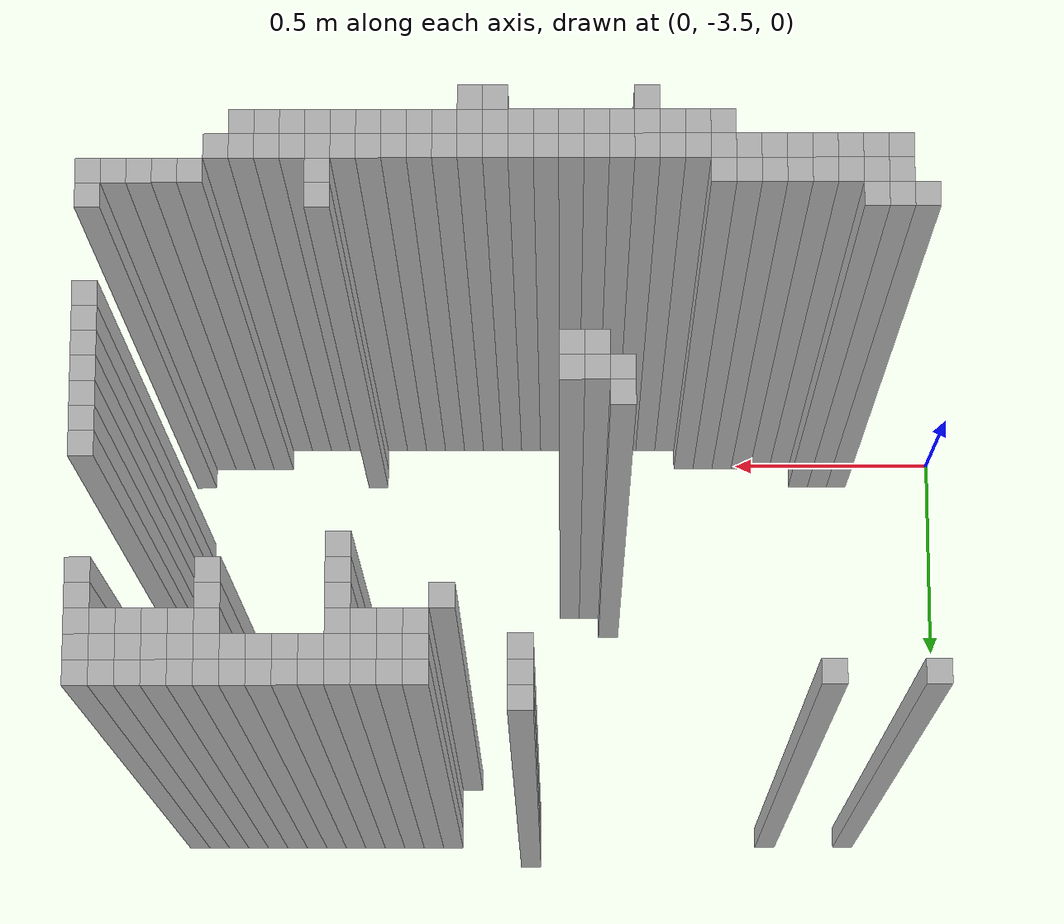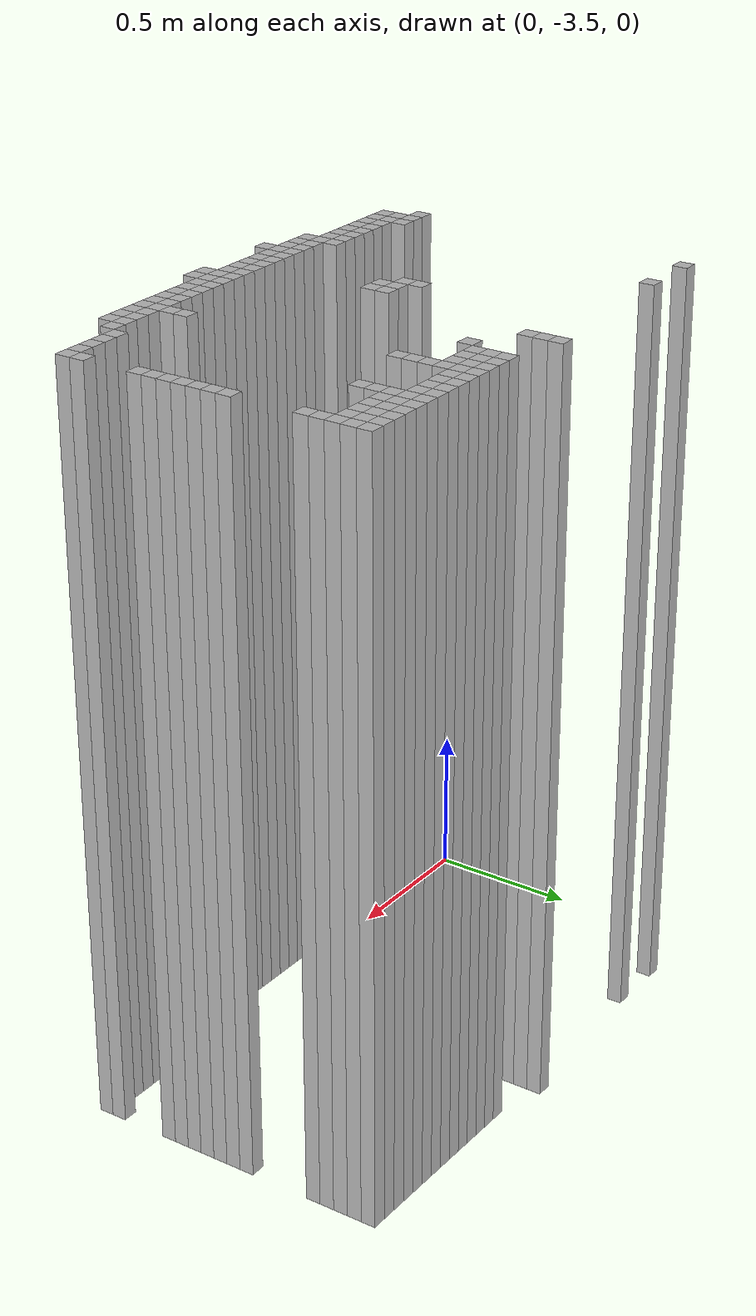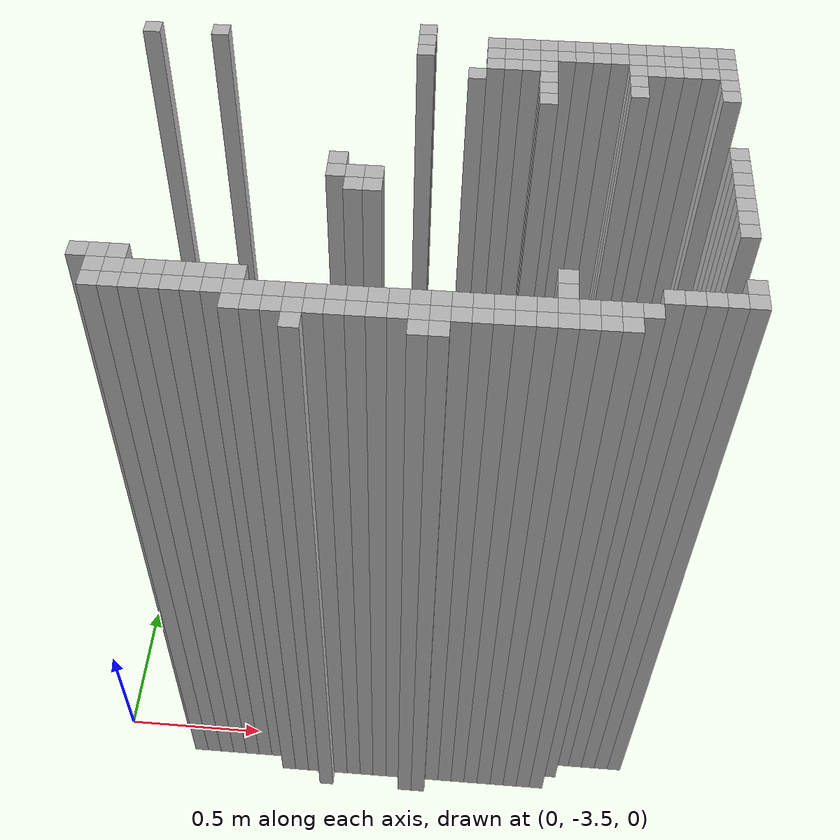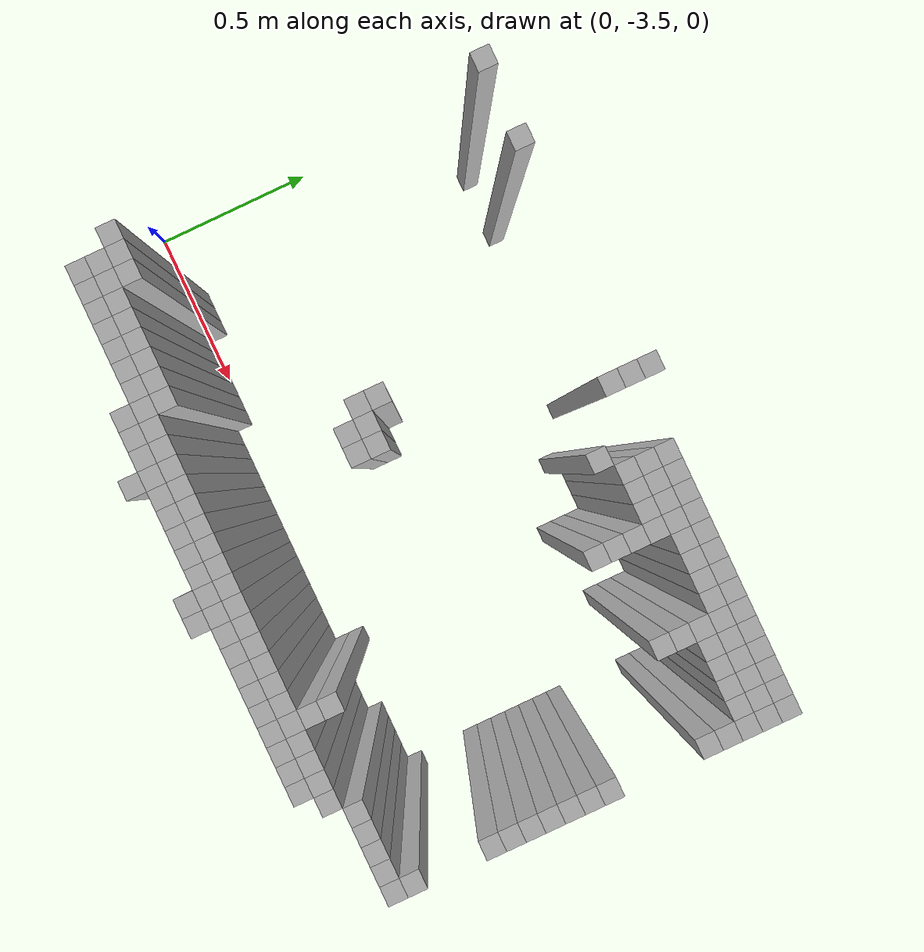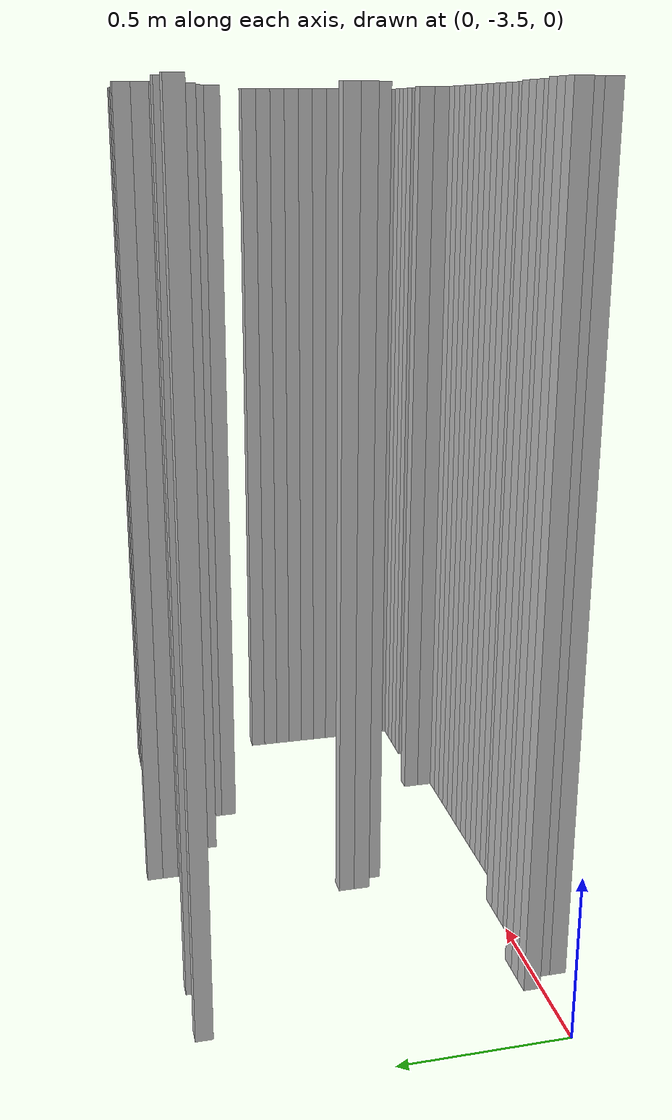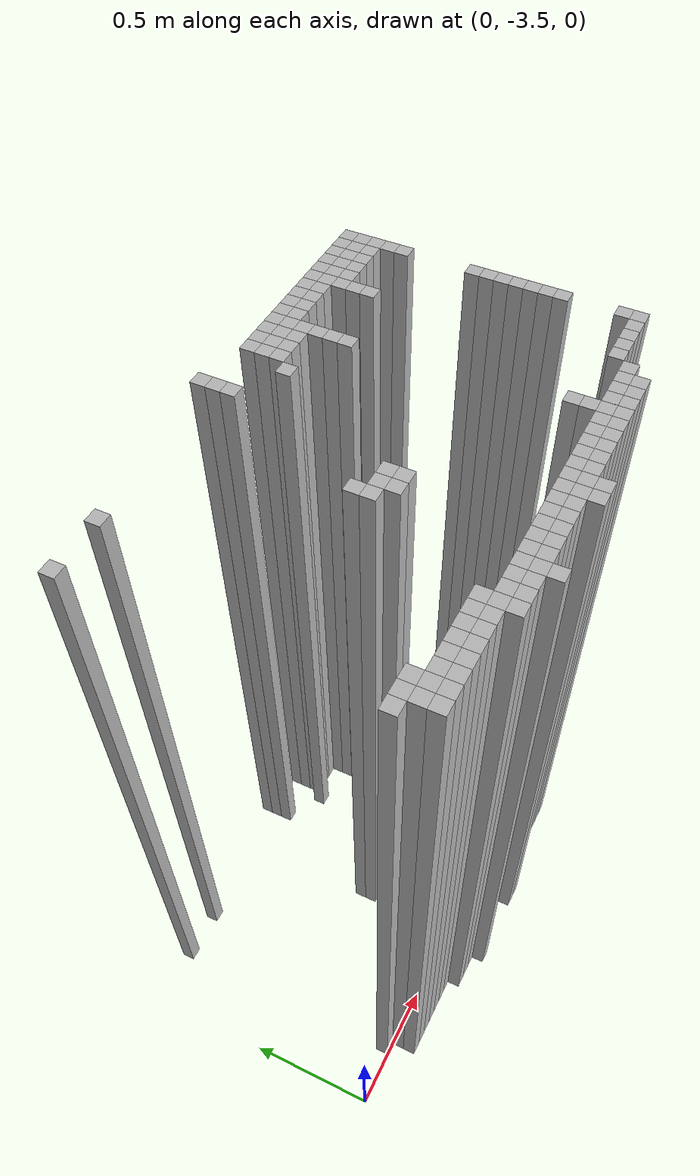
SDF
<sdf version="1.9">
 <world name="map_world">
  <model name="wall_244_203">
   <static>true</static>
   <pose>1.039 -2.470 1.250 0 0 0</pose>
   <link name="link">
    <collision name="collision"><geometry><box><size>0.050 0.050 2.500</size></box></geometry></collision>
    <visual name="visual"><geometry><box><size>0.050 0.050 2.500</size></box></geometry></visual>
   </link>
  </model>
  <model name="wall_228_204">
   <static>true</static>
   <pose>0.239 -2.520 1.250 0 0 0</pose>
   <link name="link">
    <collision name="collision"><geometry><box><size>0.050 0.050 2.500</size></box></geometry></collision>
    <visual name="visual"><geometry><box><size>0.050 0.050 2.500</size></box></geometry></visual>
   </link>
  </model>
  <model name="wall_232_204">
   <static>true</static>
   <pose>0.439 -2.520 1.250 0 0 0</pose>
   <link name="link">
    <collision name="collision"><geometry><box><size>0.050 0.050 2.500</size></box></geometry></collision>
    <visual name="visual"><geometry><box><size>0.050 0.050 2.500</size></box></geometry></visual>
   </link>
  </model>
  <model name="wall_244_204">
   <static>true</static>
   <pose>1.039 -2.520 1.250 0 0 0</pose>
   <link name="link">
    <collision name="collision"><geometry><box><size>0.050 0.050 2.500</size></box></geometry></collision>
    <visual name="visual"><geometry><box><size>0.050 0.050 2.500</size></box></geometry></visual>
   </link>
  </model>
  <model name="wall_248_204">
   <static>true</static>
   <pose>1.239 -2.520 1.250 0 0 0</pose>
   <link name="link">
    <collision name="collision"><geometry><box><size>0.050 0.050 2.500</size></box></geometry></collision>
    <visual name="visual"><geometry><box><size>0.050 0.050 2.500</size></box></geometry></visual>
   </link>
  </model>
  <model name="wall_249_204">
   <static>true</static>
   <pose>1.289 -2.520 1.250 0 0 0</pose>
   <link name="link">
    <collision name="collision"><geometry><box><size>0.050 0.050 2.500</size></box></geometry></collision>
    <visual name="visual"><geometry><box><size>0.050 0.050 2.500</size></box></geometry></visual>
   </link>
  </model>
  <model name="wall_250_204">
   <static>true</static>
   <pose>1.339 -2.520 1.250 0 0 0</pose>
   <link name="link">
    <collision name="collision"><geometry><box><size>0.050 0.050 2.500</size></box></geometry></collision>
    <visual name="visual"><geometry><box><size>0.050 0.050 2.500</size></box></geometry></visual>
   </link>
  </model>
  <model name="wall_251_204">
   <static>true</static>
   <pose>1.389 -2.520 1.250 0 0 0</pose>
   <link name="link">
    <collision name="collision"><geometry><box><size>0.050 0.050 2.500</size></box></geometry></collision>
    <visual name="visual"><geometry><box><size>0.050 0.050 2.500</size></box></geometry></visual>
   </link>
  </model>
  <model name="wall_252_204">
   <static>true</static>
   <pose>1.439 -2.520 1.250 0 0 0</pose>
   <link name="link">
    <collision name="collision"><geometry><box><size>0.050 0.050 2.500</size></box></geometry></collision>
    <visual name="visual"><geometry><box><size>0.050 0.050 2.500</size></box></geometry></visual>
   </link>
  </model>
  <model name="wall_253_204">
   <static>true</static>
   <pose>1.489 -2.520 1.250 0 0 0</pose>
   <link name="link">
    <collision name="collision"><geometry><box><size>0.050 0.050 2.500</size></box></geometry></collision>
    <visual name="visual"><geometry><box><size>0.050 0.050 2.500</size></box></geometry></visual>
   </link>
  </model>
  <model name="wall_254_204">
   <static>true</static>
   <pose>1.539 -2.520 1.250 0 0 0</pose>
   <link name="link">
    <collision name="collision"><geometry><box><size>0.050 0.050 2.500</size></box></geometry></collision>
    <visual name="visual"><geometry><box><size>0.050 0.050 2.500</size></box></geometry></visual>
   </link>
  </model>
  <model name="wall_255_204">
   <static>true</static>
   <pose>1.589 -2.520 1.250 0 0 0</pose>
   <link name="link">
    <collision name="collision"><geometry><box><size>0.050 0.050 2.500</size></box></geometry></collision>
    <visual name="visual"><geometry><box><size>0.050 0.050 2.500</size></box></geometry></visual>
   </link>
  </model>
  <model name="wall_256_204">
   <static>true</static>
   <pose>1.639 -2.520 1.250 0 0 0</pose>
   <link name="link">
    <collision name="collision"><geometry><box><size>0.050 0.050 2.500</size></box></geometry></collision>
    <visual name="visual"><geometry><box><size>0.050 0.050 2.500</size></box></geometry></visual>
   </link>
  </model>
  <model name="wall_257_204">
   <static>true</static>
   <pose>1.689 -2.520 1.250 0 0 0</pose>
   <link name="link">
    <collision name="collision"><geometry><box><size>0.050 0.050 2.500</size></box></geometry></collision>
    <visual name="visual"><geometry><box><size>0.050 0.050 2.500</size></box></geometry></visual>
   </link>
  </model>
  <model name="wall_258_204">
   <static>true</static>
   <pose>1.739 -2.520 1.250 0 0 0</pose>
   <link name="link">
    <collision name="collision"><geometry><box><size>0.050 0.050 2.500</size></box></geometry></collision>
    <visual name="visual"><geometry><box><size>0.050 0.050 2.500</size></box></geometry></visual>
   </link>
  </model>
  <model name="wall_259_204">
   <static>true</static>
   <pose>1.789 -2.520 1.250 0 0 0</pose>
   <link name="link">
    <collision name="collision"><geometry><box><size>0.050 0.050 2.500</size></box></geometry></collision>
    <visual name="visual"><geometry><box><size>0.050 0.050 2.500</size></box></geometry></visual>
   </link>
  </model>
  <model name="wall_260_204">
   <static>true</static>
   <pose>1.839 -2.520 1.250 0 0 0</pose>
   <link name="link">
    <collision name="collision"><geometry><box><size>0.050 0.050 2.500</size></box></geometry></collision>
    <visual name="visual"><geometry><box><size>0.050 0.050 2.500</size></box></geometry></visual>
   </link>
  </model>
  <model name="wall_261_204">
   <static>true</static>
   <pose>1.889 -2.520 1.250 0 0 0</pose>
   <link name="link">
    <collision name="collision"><geometry><box><size>0.050 0.050 2.500</size></box></geometry></collision>
    <visual name="visual"><geometry><box><size>0.050 0.050 2.500</size></box></geometry></visual>
   </link>
  </model>
  <model name="wall_244_205">
   <static>true</static>
   <pose>1.039 -2.570 1.250 0 0 0</pose>
   <link name="link">
    <collision name="collision"><geometry><box><size>0.050 0.050 2.500</size></box></geometry></collision>
    <visual name="visual"><geometry><box><size>0.050 0.050 2.500</size></box></geometry></visual>
   </link>
  </model>
  <model name="wall_248_205">
   <static>true</static>
   <pose>1.239 -2.570 1.250 0 0 0</pose>
   <link name="link">
    <collision name="collision"><geometry><box><size>0.050 0.050 2.500</size></box></geometry></collision>
    <visual name="visual"><geometry><box><size>0.050 0.050 2.500</size></box></geometry></visual>
   </link>
  </model>
  <model name="wall_249_205">
   <static>true</static>
   <pose>1.289 -2.570 1.250 0 0 0</pose>
   <link name="link">
    <collision name="collision"><geometry><box><size>0.050 0.050 2.500</size></box></geometry></collision>
    <visual name="visual"><geometry><box><size>0.050 0.050 2.500</size></box></geometry></visual>
   </link>
  </model>
  <model name="wall_250_205">
   <static>true</static>
   <pose>1.339 -2.570 1.250 0 0 0</pose>
   <link name="link">
    <collision name="collision"><geometry><box><size>0.050 0.050 2.500</size></box></geometry></collision>
    <visual name="visual"><geometry><box><size>0.050 0.050 2.500</size></box></geometry></visual>
   </link>
  </model>
  <model name="wall_251_205">
   <static>true</static>
   <pose>1.389 -2.570 1.250 0 0 0</pose>
   <link name="link">
    <collision name="collision"><geometry><box><size>0.050 0.050 2.500</size></box></geometry></collision>
    <visual name="visual"><geometry><box><size>0.050 0.050 2.500</size></box></geometry></visual>
   </link>
  </model>
  <model name="wall_252_205">
   <static>true</static>
   <pose>1.439 -2.570 1.250 0 0 0</pose>
   <link name="link">
    <collision name="collision"><geometry><box><size>0.050 0.050 2.500</size></box></geometry></collision>
    <visual name="visual"><geometry><box><size>0.050 0.050 2.500</size></box></geometry></visual>
   </link>
  </model>
  <model name="wall_253_205">
   <static>true</static>
   <pose>1.489 -2.570 1.250 0 0 0</pose>
   <link name="link">
    <collision name="collision"><geometry><box><size>0.050 0.050 2.500</size></box></geometry></collision>
    <visual name="visual"><geometry><box><size>0.050 0.050 2.500</size></box></geometry></visual>
   </link>
  </model>
  <model name="wall_254_205">
   <static>true</static>
   <pose>1.539 -2.570 1.250 0 0 0</pose>
   <link name="link">
    <collision name="collision"><geometry><box><size>0.050 0.050 2.500</size></box></geometry></collision>
    <visual name="visual"><geometry><box><size>0.050 0.050 2.500</size></box></geometry></visual>
   </link>
  </model>
  <model name="wall_255_205">
   <static>true</static>
   <pose>1.589 -2.570 1.250 0 0 0</pose>
   <link name="link">
    <collision name="collision"><geometry><box><size>0.050 0.050 2.500</size></box></geometry></collision>
    <visual name="visual"><geometry><box><size>0.050 0.050 2.500</size></box></geometry></visual>
   </link>
  </model>
  <model name="wall_256_205">
   <static>true</static>
   <pose>1.639 -2.570 1.250 0 0 0</pose>
   <link name="link">
    <collision name="collision"><geometry><box><size>0.050 0.050 2.500</size></box></geometry></collision>
    <visual name="visual"><geometry><box><size>0.050 0.050 2.500</size></box></geometry></visual>
   </link>
  </model>
  <model name="wall_257_205">
   <static>true</static>
   <pose>1.689 -2.570 1.250 0 0 0</pose>
   <link name="link">
    <collision name="collision"><geometry><box><size>0.050 0.050 2.500</size></box></geometry></collision>
    <visual name="visual"><geometry><box><size>0.050 0.050 2.500</size></box></geometry></visual>
   </link>
  </model>
  <model name="wall_258_205">
   <static>true</static>
   <pose>1.739 -2.570 1.250 0 0 0</pose>
   <link name="link">
    <collision name="collision"><geometry><box><size>0.050 0.050 2.500</size></box></geometry></collision>
    <visual name="visual"><geometry><box><size>0.050 0.050 2.500</size></box></geometry></visual>
   </link>
  </model>
  <model name="wall_259_205">
   <static>true</static>
   <pose>1.789 -2.570 1.250 0 0 0</pose>
   <link name="link">
    <collision name="collision"><geometry><box><size>0.050 0.050 2.500</size></box></geometry></collision>
    <visual name="visual"><geometry><box><size>0.050 0.050 2.500</size></box></geometry></visual>
   </link>
  </model>
  <model name="wall_260_205">
   <static>true</static>
   <pose>1.839 -2.570 1.250 0 0 0</pose>
   <link name="link">
    <collision name="collision"><geometry><box><size>0.050 0.050 2.500</size></box></geometry></collision>
    <visual name="visual"><geometry><box><size>0.050 0.050 2.500</size></box></geometry></visual>
   </link>
  </model>
  <model name="wall_261_205">
   <static>true</static>
   <pose>1.889 -2.570 1.250 0 0 0</pose>
   <link name="link">
    <collision name="collision"><geometry><box><size>0.050 0.050 2.500</size></box></geometry></collision>
    <visual name="visual"><geometry><box><size>0.050 0.050 2.500</size></box></geometry></visual>
   </link>
  </model>
  <model name="wall_248_206">
   <static>true</static>
   <pose>1.239 -2.620 1.250 0 0 0</pose>
   <link name="link">
    <collision name="collision"><geometry><box><size>0.050 0.050 2.500</size></box></geometry></collision>
    <visual name="visual"><geometry><box><size>0.050 0.050 2.500</size></box></geometry></visual>
   </link>
  </model>
  <model name="wall_249_206">
   <static>true</static>
   <pose>1.289 -2.620 1.250 0 0 0</pose>
   <link name="link">
    <collision name="collision"><geometry><box><size>0.050 0.050 2.500</size></box></geometry></collision>
    <visual name="visual"><geometry><box><size>0.050 0.050 2.500</size></box></geometry></visual>
   </link>
  </model>
  <model name="wall_250_206">
   <static>true</static>
   <pose>1.339 -2.620 1.250 0 0 0</pose>
   <link name="link">
    <collision name="collision"><geometry><box><size>0.050 0.050 2.500</size></box></geometry></collision>
    <visual name="visual"><geometry><box><size>0.050 0.050 2.500</size></box></geometry></visual>
   </link>
  </model>
  <model name="wall_251_206">
   <static>true</static>
   <pose>1.389 -2.620 1.250 0 0 0</pose>
   <link name="link">
    <collision name="collision"><geometry><box><size>0.050 0.050 2.500</size></box></geometry></collision>
    <visual name="visual"><geometry><box><size>0.050 0.050 2.500</size></box></geometry></visual>
   </link>
  </model>
  <model name="wall_256_206">
   <static>true</static>
   <pose>1.639 -2.620 1.250 0 0 0</pose>
   <link name="link">
    <collision name="collision"><geometry><box><size>0.050 0.050 2.500</size></box></geometry></collision>
    <visual name="visual"><geometry><box><size>0.050 0.050 2.500</size></box></geometry></visual>
   </link>
  </model>
  <model name="wall_257_206">
   <static>true</static>
   <pose>1.689 -2.620 1.250 0 0 0</pose>
   <link name="link">
    <collision name="collision"><geometry><box><size>0.050 0.050 2.500</size></box></geometry></collision>
    <visual name="visual"><geometry><box><size>0.050 0.050 2.500</size></box></geometry></visual>
   </link>
  </model>
  <model name="wall_258_206">
   <static>true</static>
   <pose>1.739 -2.620 1.250 0 0 0</pose>
   <link name="link">
    <collision name="collision"><geometry><box><size>0.050 0.050 2.500</size></box></geometry></collision>
    <visual name="visual"><geometry><box><size>0.050 0.050 2.500</size></box></geometry></visual>
   </link>
  </model>
  <model name="wall_259_206">
   <static>true</static>
   <pose>1.789 -2.620 1.250 0 0 0</pose>
   <link name="link">
    <collision name="collision"><geometry><box><size>0.050 0.050 2.500</size></box></geometry></collision>
    <visual name="visual"><geometry><box><size>0.050 0.050 2.500</size></box></geometry></visual>
   </link>
  </model>
  <model name="wall_260_206">
   <static>true</static>
   <pose>1.839 -2.620 1.250 0 0 0</pose>
   <link name="link">
    <collision name="collision"><geometry><box><size>0.050 0.050 2.500</size></box></geometry></collision>
    <visual name="visual"><geometry><box><size>0.050 0.050 2.500</size></box></geometry></visual>
   </link>
  </model>
  <model name="wall_261_206">
   <static>true</static>
   <pose>1.889 -2.620 1.250 0 0 0</pose>
   <link name="link">
    <collision name="collision"><geometry><box><size>0.050 0.050 2.500</size></box></geometry></collision>
    <visual name="visual"><geometry><box><size>0.050 0.050 2.500</size></box></geometry></visual>
   </link>
  </model>
  <model name="wall_247_207">
   <static>true</static>
   <pose>1.189 -2.670 1.250 0 0 0</pose>
   <link name="link">
    <collision name="collision"><geometry><box><size>0.050 0.050 2.500</size></box></geometry></collision>
    <visual name="visual"><geometry><box><size>0.050 0.050 2.500</size></box></geometry></visual>
   </link>
  </model>
  <model name="wall_251_207">
   <static>true</static>
   <pose>1.389 -2.670 1.250 0 0 0</pose>
   <link name="link">
    <collision name="collision"><geometry><box><size>0.050 0.050 2.500</size></box></geometry></collision>
    <visual name="visual"><geometry><box><size>0.050 0.050 2.500</size></box></geometry></visual>
   </link>
  </model>
  <model name="wall_256_207">
   <static>true</static>
   <pose>1.639 -2.670 1.250 0 0 0</pose>
   <link name="link">
    <collision name="collision"><geometry><box><size>0.050 0.050 2.500</size></box></geometry></collision>
    <visual name="visual"><geometry><box><size>0.050 0.050 2.500</size></box></geometry></visual>
   </link>
  </model>
  <model name="wall_261_207">
   <static>true</static>
   <pose>1.889 -2.670 1.250 0 0 0</pose>
   <link name="link">
    <collision name="collision"><geometry><box><size>0.050 0.050 2.500</size></box></geometry></collision>
    <visual name="visual"><geometry><box><size>0.050 0.050 2.500</size></box></geometry></visual>
   </link>
  </model>
  <model name="wall_251_208">
   <static>true</static>
   <pose>1.389 -2.720 1.250 0 0 0</pose>
   <link name="link">
    <collision name="collision"><geometry><box><size>0.050 0.050 2.500</size></box></geometry></collision>
    <visual name="visual"><geometry><box><size>0.050 0.050 2.500</size></box></geometry></visual>
   </link>
  </model>
  <model name="wall_256_208">
   <static>true</static>
   <pose>1.639 -2.720 1.250 0 0 0</pose>
   <link name="link">
    <collision name="collision"><geometry><box><size>0.050 0.050 2.500</size></box></geometry></collision>
    <visual name="visual"><geometry><box><size>0.050 0.050 2.500</size></box></geometry></visual>
   </link>
  </model>
  <model name="wall_261_208">
   <static>true</static>
   <pose>1.889 -2.720 1.250 0 0 0</pose>
   <link name="link">
    <collision name="collision"><geometry><box><size>0.050 0.050 2.500</size></box></geometry></collision>
    <visual name="visual"><geometry><box><size>0.050 0.050 2.500</size></box></geometry></visual>
   </link>
  </model>
  <model name="wall_251_209">
   <static>true</static>
   <pose>1.389 -2.770 1.250 0 0 0</pose>
   <link name="link">
    <collision name="collision"><geometry><box><size>0.050 0.050 2.500</size></box></geometry></collision>
    <visual name="visual"><geometry><box><size>0.050 0.050 2.500</size></box></geometry></visual>
   </link>
  </model>
  <model name="wall_261_213">
   <static>true</static>
   <pose>1.889 -2.970 1.250 0 0 0</pose>
   <link name="link">
    <collision name="collision"><geometry><box><size>0.050 0.050 2.500</size></box></geometry></collision>
    <visual name="visual"><geometry><box><size>0.050 0.050 2.500</size></box></geometry></visual>
   </link>
  </model>
  <model name="wall_261_214">
   <static>true</static>
   <pose>1.889 -3.020 1.250 0 0 0</pose>
   <link name="link">
    <collision name="collision"><geometry><box><size>0.050 0.050 2.500</size></box></geometry></collision>
    <visual name="visual"><geometry><box><size>0.050 0.050 2.500</size></box></geometry></visual>
   </link>
  </model>
  <model name="wall_240_215">
   <static>true</static>
   <pose>0.839 -3.070 1.250 0 0 0</pose>
   <link name="link">
    <collision name="collision"><geometry><box><size>0.050 0.050 2.500</size></box></geometry></collision>
    <visual name="visual"><geometry><box><size>0.050 0.050 2.500</size></box></geometry></visual>
   </link>
  </model>
  <model name="wall_261_215">
   <static>true</static>
   <pose>1.889 -3.070 1.250 0 0 0</pose>
   <link name="link">
    <collision name="collision"><geometry><box><size>0.050 0.050 2.500</size></box></geometry></collision>
    <visual name="visual"><geometry><box><size>0.050 0.050 2.500</size></box></geometry></visual>
   </link>
  </model>
  <model name="wall_240_216">
   <static>true</static>
   <pose>0.839 -3.120 1.250 0 0 0</pose>
   <link name="link">
    <collision name="collision"><geometry><box><size>0.050 0.050 2.500</size></box></geometry></collision>
    <visual name="visual"><geometry><box><size>0.050 0.050 2.500</size></box></geometry></visual>
   </link>
  </model>
  <model name="wall_241_216">
   <static>true</static>
   <pose>0.889 -3.120 1.250 0 0 0</pose>
   <link name="link">
    <collision name="collision"><geometry><box><size>0.050 0.050 2.500</size></box></geometry></collision>
    <visual name="visual"><geometry><box><size>0.050 0.050 2.500</size></box></geometry></visual>
   </link>
  </model>
  <model name="wall_242_216">
   <static>true</static>
   <pose>0.939 -3.120 1.250 0 0 0</pose>
   <link name="link">
    <collision name="collision"><geometry><box><size>0.050 0.050 2.500</size></box></geometry></collision>
    <visual name="visual"><geometry><box><size>0.050 0.050 2.500</size></box></geometry></visual>
   </link>
  </model>
  <model name="wall_261_216">
   <static>true</static>
   <pose>1.889 -3.120 1.250 0 0 0</pose>
   <link name="link">
    <collision name="collision"><geometry><box><size>0.050 0.050 2.500</size></box></geometry></collision>
    <visual name="visual"><geometry><box><size>0.050 0.050 2.500</size></box></geometry></visual>
   </link>
  </model>
  <model name="wall_241_217">
   <static>true</static>
   <pose>0.889 -3.170 1.250 0 0 0</pose>
   <link name="link">
    <collision name="collision"><geometry><box><size>0.050 0.050 2.500</size></box></geometry></collision>
    <visual name="visual"><geometry><box><size>0.050 0.050 2.500</size></box></geometry></visual>
   </link>
  </model>
  <model name="wall_242_217">
   <static>true</static>
   <pose>0.939 -3.170 1.250 0 0 0</pose>
   <link name="link">
    <collision name="collision"><geometry><box><size>0.050 0.050 2.500</size></box></geometry></collision>
    <visual name="visual"><geometry><box><size>0.050 0.050 2.500</size></box></geometry></visual>
   </link>
  </model>
  <model name="wall_261_217">
   <static>true</static>
   <pose>1.889 -3.170 1.250 0 0 0</pose>
   <link name="link">
    <collision name="collision"><geometry><box><size>0.050 0.050 2.500</size></box></geometry></collision>
    <visual name="visual"><geometry><box><size>0.050 0.050 2.500</size></box></geometry></visual>
   </link>
  </model>
  <model name="wall_261_218">
   <static>true</static>
   <pose>1.889 -3.220 1.250 0 0 0</pose>
   <link name="link">
    <collision name="collision"><geometry><box><size>0.050 0.050 2.500</size></box></geometry></collision>
    <visual name="visual"><geometry><box><size>0.050 0.050 2.500</size></box></geometry></visual>
   </link>
  </model>
  <model name="wall_261_219">
   <static>true</static>
   <pose>1.889 -3.270 1.250 0 0 0</pose>
   <link name="link">
    <collision name="collision"><geometry><box><size>0.050 0.050 2.500</size></box></geometry></collision>
    <visual name="visual"><geometry><box><size>0.050 0.050 2.500</size></box></geometry></visual>
   </link>
  </model>
  <model name="wall_228_223">
   <static>true</static>
   <pose>0.239 -3.470 1.250 0 0 0</pose>
   <link name="link">
    <collision name="collision"><geometry><box><size>0.050 0.050 2.500</size></box></geometry></collision>
    <visual name="visual"><geometry><box><size>0.050 0.050 2.500</size></box></geometry></visual>
   </link>
  </model>
  <model name="wall_229_223">
   <static>true</static>
   <pose>0.289 -3.470 1.250 0 0 0</pose>
   <link name="link">
    <collision name="collision"><geometry><box><size>0.050 0.050 2.500</size></box></geometry></collision>
    <visual name="visual"><geometry><box><size>0.050 0.050 2.500</size></box></geometry></visual>
   </link>
  </model>
  <model name="wall_230_223">
   <static>true</static>
   <pose>0.339 -3.470 1.250 0 0 0</pose>
   <link name="link">
    <collision name="collision"><geometry><box><size>0.050 0.050 2.500</size></box></geometry></collision>
    <visual name="visual"><geometry><box><size>0.050 0.050 2.500</size></box></geometry></visual>
   </link>
  </model>
  <model name="wall_252_223">
   <static>true</static>
   <pose>1.439 -3.470 1.250 0 0 0</pose>
   <link name="link">
    <collision name="collision"><geometry><box><size>0.050 0.050 2.500</size></box></geometry></collision>
    <visual name="visual"><geometry><box><size>0.050 0.050 2.500</size></box></geometry></visual>
   </link>
  </model>
  <model name="wall_261_223">
   <static>true</static>
   <pose>1.889 -3.470 1.250 0 0 0</pose>
   <link name="link">
    <collision name="collision"><geometry><box><size>0.050 0.050 2.500</size></box></geometry></collision>
    <visual name="visual"><geometry><box><size>0.050 0.050 2.500</size></box></geometry></visual>
   </link>
  </model>
  <model name="wall_229_224">
   <static>true</static>
   <pose>0.289 -3.520 1.250 0 0 0</pose>
   <link name="link">
    <collision name="collision"><geometry><box><size>0.050 0.050 2.500</size></box></geometry></collision>
    <visual name="visual"><geometry><box><size>0.050 0.050 2.500</size></box></geometry></visual>
   </link>
  </model>
  <model name="wall_230_224">
   <static>true</static>
   <pose>0.339 -3.520 1.250 0 0 0</pose>
   <link name="link">
    <collision name="collision"><geometry><box><size>0.050 0.050 2.500</size></box></geometry></collision>
    <visual name="visual"><geometry><box><size>0.050 0.050 2.500</size></box></geometry></visual>
   </link>
  </model>
  <model name="wall_231_224">
   <static>true</static>
   <pose>0.389 -3.520 1.250 0 0 0</pose>
   <link name="link">
    <collision name="collision"><geometry><box><size>0.050 0.050 2.500</size></box></geometry></collision>
    <visual name="visual"><geometry><box><size>0.050 0.050 2.500</size></box></geometry></visual>
   </link>
  </model>
  <model name="wall_232_224">
   <static>true</static>
   <pose>0.439 -3.520 1.250 0 0 0</pose>
   <link name="link">
    <collision name="collision"><geometry><box><size>0.050 0.050 2.500</size></box></geometry></collision>
    <visual name="visual"><geometry><box><size>0.050 0.050 2.500</size></box></geometry></visual>
   </link>
  </model>
  <model name="wall_233_224">
   <static>true</static>
   <pose>0.489 -3.520 1.250 0 0 0</pose>
   <link name="link">
    <collision name="collision"><geometry><box><size>0.050 0.050 2.500</size></box></geometry></collision>
    <visual name="visual"><geometry><box><size>0.050 0.050 2.500</size></box></geometry></visual>
   </link>
  </model>
  <model name="wall_234_224">
   <static>true</static>
   <pose>0.539 -3.520 1.250 0 0 0</pose>
   <link name="link">
    <collision name="collision"><geometry><box><size>0.050 0.050 2.500</size></box></geometry></collision>
    <visual name="visual"><geometry><box><size>0.050 0.050 2.500</size></box></geometry></visual>
   </link>
  </model>
  <model name="wall_235_224">
   <static>true</static>
   <pose>0.589 -3.520 1.250 0 0 0</pose>
   <link name="link">
    <collision name="collision"><geometry><box><size>0.050 0.050 2.500</size></box></geometry></collision>
    <visual name="visual"><geometry><box><size>0.050 0.050 2.500</size></box></geometry></visual>
   </link>
  </model>
  <model name="wall_236_224">
   <static>true</static>
   <pose>0.639 -3.520 1.250 0 0 0</pose>
   <link name="link">
    <collision name="collision"><geometry><box><size>0.050 0.050 2.500</size></box></geometry></collision>
    <visual name="visual"><geometry><box><size>0.050 0.050 2.500</size></box></geometry></visual>
   </link>
  </model>
  <model name="wall_252_224">
   <static>true</static>
   <pose>1.439 -3.520 1.250 0 0 0</pose>
   <link name="link">
    <collision name="collision"><geometry><box><size>0.050 0.050 2.500</size></box></geometry></collision>
    <visual name="visual"><geometry><box><size>0.050 0.050 2.500</size></box></geometry></visual>
   </link>
  </model>
  <model name="wall_257_224">
   <static>true</static>
   <pose>1.689 -3.520 1.250 0 0 0</pose>
   <link name="link">
    <collision name="collision"><geometry><box><size>0.050 0.050 2.500</size></box></geometry></collision>
    <visual name="visual"><geometry><box><size>0.050 0.050 2.500</size></box></geometry></visual>
   </link>
  </model>
  <model name="wall_258_224">
   <static>true</static>
   <pose>1.739 -3.520 1.250 0 0 0</pose>
   <link name="link">
    <collision name="collision"><geometry><box><size>0.050 0.050 2.500</size></box></geometry></collision>
    <visual name="visual"><geometry><box><size>0.050 0.050 2.500</size></box></geometry></visual>
   </link>
  </model>
  <model name="wall_259_224">
   <static>true</static>
   <pose>1.789 -3.520 1.250 0 0 0</pose>
   <link name="link">
    <collision name="collision"><geometry><box><size>0.050 0.050 2.500</size></box></geometry></collision>
    <visual name="visual"><geometry><box><size>0.050 0.050 2.500</size></box></geometry></visual>
   </link>
  </model>
  <model name="wall_260_224">
   <static>true</static>
   <pose>1.839 -3.520 1.250 0 0 0</pose>
   <link name="link">
    <collision name="collision"><geometry><box><size>0.050 0.050 2.500</size></box></geometry></collision>
    <visual name="visual"><geometry><box><size>0.050 0.050 2.500</size></box></geometry></visual>
   </link>
  </model>
  <model name="wall_261_224">
   <static>true</static>
   <pose>1.889 -3.520 1.250 0 0 0</pose>
   <link name="link">
    <collision name="collision"><geometry><box><size>0.050 0.050 2.500</size></box></geometry></collision>
    <visual name="visual"><geometry><box><size>0.050 0.050 2.500</size></box></geometry></visual>
   </link>
  </model>
  <model name="wall_229_225">
   <static>true</static>
   <pose>0.289 -3.570 1.250 0 0 0</pose>
   <link name="link">
    <collision name="collision"><geometry><box><size>0.050 0.050 2.500</size></box></geometry></collision>
    <visual name="visual"><geometry><box><size>0.050 0.050 2.500</size></box></geometry></visual>
   </link>
  </model>
  <model name="wall_230_225">
   <static>true</static>
   <pose>0.339 -3.570 1.250 0 0 0</pose>
   <link name="link">
    <collision name="collision"><geometry><box><size>0.050 0.050 2.500</size></box></geometry></collision>
    <visual name="visual"><geometry><box><size>0.050 0.050 2.500</size></box></geometry></visual>
   </link>
  </model>
  <model name="wall_231_225">
   <static>true</static>
   <pose>0.389 -3.570 1.250 0 0 0</pose>
   <link name="link">
    <collision name="collision"><geometry><box><size>0.050 0.050 2.500</size></box></geometry></collision>
    <visual name="visual"><geometry><box><size>0.050 0.050 2.500</size></box></geometry></visual>
   </link>
  </model>
  <model name="wall_232_225">
   <static>true</static>
   <pose>0.439 -3.570 1.250 0 0 0</pose>
   <link name="link">
    <collision name="collision"><geometry><box><size>0.050 0.050 2.500</size></box></geometry></collision>
    <visual name="visual"><geometry><box><size>0.050 0.050 2.500</size></box></geometry></visual>
   </link>
  </model>
  <model name="wall_233_225">
   <static>true</static>
   <pose>0.489 -3.570 1.250 0 0 0</pose>
   <link name="link">
    <collision name="collision"><geometry><box><size>0.050 0.050 2.500</size></box></geometry></collision>
    <visual name="visual"><geometry><box><size>0.050 0.050 2.500</size></box></geometry></visual>
   </link>
  </model>
  <model name="wall_234_225">
   <static>true</static>
   <pose>0.539 -3.570 1.250 0 0 0</pose>
   <link name="link">
    <collision name="collision"><geometry><box><size>0.050 0.050 2.500</size></box></geometry></collision>
    <visual name="visual"><geometry><box><size>0.050 0.050 2.500</size></box></geometry></visual>
   </link>
  </model>
  <model name="wall_235_225">
   <static>true</static>
   <pose>0.589 -3.570 1.250 0 0 0</pose>
   <link name="link">
    <collision name="collision"><geometry><box><size>0.050 0.050 2.500</size></box></geometry></collision>
    <visual name="visual"><geometry><box><size>0.050 0.050 2.500</size></box></geometry></visual>
   </link>
  </model>
  <model name="wall_236_225">
   <static>true</static>
   <pose>0.639 -3.570 1.250 0 0 0</pose>
   <link name="link">
    <collision name="collision"><geometry><box><size>0.050 0.050 2.500</size></box></geometry></collision>
    <visual name="visual"><geometry><box><size>0.050 0.050 2.500</size></box></geometry></visual>
   </link>
  </model>
  <model name="wall_237_225">
   <static>true</static>
   <pose>0.689 -3.570 1.250 0 0 0</pose>
   <link name="link">
    <collision name="collision"><geometry><box><size>0.050 0.050 2.500</size></box></geometry></collision>
    <visual name="visual"><geometry><box><size>0.050 0.050 2.500</size></box></geometry></visual>
   </link>
  </model>
  <model name="wall_238_225">
   <static>true</static>
   <pose>0.739 -3.570 1.250 0 0 0</pose>
   <link name="link">
    <collision name="collision"><geometry><box><size>0.050 0.050 2.500</size></box></geometry></collision>
    <visual name="visual"><geometry><box><size>0.050 0.050 2.500</size></box></geometry></visual>
   </link>
  </model>
  <model name="wall_239_225">
   <static>true</static>
   <pose>0.789 -3.570 1.250 0 0 0</pose>
   <link name="link">
    <collision name="collision"><geometry><box><size>0.050 0.050 2.500</size></box></geometry></collision>
    <visual name="visual"><geometry><box><size>0.050 0.050 2.500</size></box></geometry></visual>
   </link>
  </model>
  <model name="wall_240_225">
   <static>true</static>
   <pose>0.839 -3.570 1.250 0 0 0</pose>
   <link name="link">
    <collision name="collision"><geometry><box><size>0.050 0.050 2.500</size></box></geometry></collision>
    <visual name="visual"><geometry><box><size>0.050 0.050 2.500</size></box></geometry></visual>
   </link>
  </model>
  <model name="wall_241_225">
   <static>true</static>
   <pose>0.889 -3.570 1.250 0 0 0</pose>
   <link name="link">
    <collision name="collision"><geometry><box><size>0.050 0.050 2.500</size></box></geometry></collision>
    <visual name="visual"><geometry><box><size>0.050 0.050 2.500</size></box></geometry></visual>
   </link>
  </model>
  <model name="wall_242_225">
   <static>true</static>
   <pose>0.939 -3.570 1.250 0 0 0</pose>
   <link name="link">
    <collision name="collision"><geometry><box><size>0.050 0.050 2.500</size></box></geometry></collision>
    <visual name="visual"><geometry><box><size>0.050 0.050 2.500</size></box></geometry></visual>
   </link>
  </model>
  <model name="wall_243_225">
   <static>true</static>
   <pose>0.989 -3.570 1.250 0 0 0</pose>
   <link name="link">
    <collision name="collision"><geometry><box><size>0.050 0.050 2.500</size></box></geometry></collision>
    <visual name="visual"><geometry><box><size>0.050 0.050 2.500</size></box></geometry></visual>
   </link>
  </model>
  <model name="wall_244_225">
   <static>true</static>
   <pose>1.039 -3.570 1.250 0 0 0</pose>
   <link name="link">
    <collision name="collision"><geometry><box><size>0.050 0.050 2.500</size></box></geometry></collision>
    <visual name="visual"><geometry><box><size>0.050 0.050 2.500</size></box></geometry></visual>
   </link>
  </model>
  <model name="wall_245_225">
   <static>true</static>
   <pose>1.089 -3.570 1.250 0 0 0</pose>
   <link name="link">
    <collision name="collision"><geometry><box><size>0.050 0.050 2.500</size></box></geometry></collision>
    <visual name="visual"><geometry><box><size>0.050 0.050 2.500</size></box></geometry></visual>
   </link>
  </model>
  <model name="wall_246_225">
   <static>true</static>
   <pose>1.139 -3.570 1.250 0 0 0</pose>
   <link name="link">
    <collision name="collision"><geometry><box><size>0.050 0.050 2.500</size></box></geometry></collision>
    <visual name="visual"><geometry><box><size>0.050 0.050 2.500</size></box></geometry></visual>
   </link>
  </model>
  <model name="wall_247_225">
   <static>true</static>
   <pose>1.189 -3.570 1.250 0 0 0</pose>
   <link name="link">
    <collision name="collision"><geometry><box><size>0.050 0.050 2.500</size></box></geometry></collision>
    <visual name="visual"><geometry><box><size>0.050 0.050 2.500</size></box></geometry></visual>
   </link>
  </model>
  <model name="wall_248_225">
   <static>true</static>
   <pose>1.239 -3.570 1.250 0 0 0</pose>
   <link name="link">
    <collision name="collision"><geometry><box><size>0.050 0.050 2.500</size></box></geometry></collision>
    <visual name="visual"><geometry><box><size>0.050 0.050 2.500</size></box></geometry></visual>
   </link>
  </model>
  <model name="wall_249_225">
   <static>true</static>
   <pose>1.289 -3.570 1.250 0 0 0</pose>
   <link name="link">
    <collision name="collision"><geometry><box><size>0.050 0.050 2.500</size></box></geometry></collision>
    <visual name="visual"><geometry><box><size>0.050 0.050 2.500</size></box></geometry></visual>
   </link>
  </model>
  <model name="wall_250_225">
   <static>true</static>
   <pose>1.339 -3.570 1.250 0 0 0</pose>
   <link name="link">
    <collision name="collision"><geometry><box><size>0.050 0.050 2.500</size></box></geometry></collision>
    <visual name="visual"><geometry><box><size>0.050 0.050 2.500</size></box></geometry></visual>
   </link>
  </model>
  <model name="wall_251_225">
   <static>true</static>
   <pose>1.389 -3.570 1.250 0 0 0</pose>
   <link name="link">
    <collision name="collision"><geometry><box><size>0.050 0.050 2.500</size></box></geometry></collision>
    <visual name="visual"><geometry><box><size>0.050 0.050 2.500</size></box></geometry></visual>
   </link>
  </model>
  <model name="wall_252_225">
   <static>true</static>
   <pose>1.439 -3.570 1.250 0 0 0</pose>
   <link name="link">
    <collision name="collision"><geometry><box><size>0.050 0.050 2.500</size></box></geometry></collision>
    <visual name="visual"><geometry><box><size>0.050 0.050 2.500</size></box></geometry></visual>
   </link>
  </model>
  <model name="wall_253_225">
   <static>true</static>
   <pose>1.489 -3.570 1.250 0 0 0</pose>
   <link name="link">
    <collision name="collision"><geometry><box><size>0.050 0.050 2.500</size></box></geometry></collision>
    <visual name="visual"><geometry><box><size>0.050 0.050 2.500</size></box></geometry></visual>
   </link>
  </model>
  <model name="wall_254_225">
   <static>true</static>
   <pose>1.539 -3.570 1.250 0 0 0</pose>
   <link name="link">
    <collision name="collision"><geometry><box><size>0.050 0.050 2.500</size></box></geometry></collision>
    <visual name="visual"><geometry><box><size>0.050 0.050 2.500</size></box></geometry></visual>
   </link>
  </model>
  <model name="wall_255_225">
   <static>true</static>
   <pose>1.589 -3.570 1.250 0 0 0</pose>
   <link name="link">
    <collision name="collision"><geometry><box><size>0.050 0.050 2.500</size></box></geometry></collision>
    <visual name="visual"><geometry><box><size>0.050 0.050 2.500</size></box></geometry></visual>
   </link>
  </model>
  <model name="wall_256_225">
   <static>true</static>
   <pose>1.639 -3.570 1.250 0 0 0</pose>
   <link name="link">
    <collision name="collision"><geometry><box><size>0.050 0.050 2.500</size></box></geometry></collision>
    <visual name="visual"><geometry><box><size>0.050 0.050 2.500</size></box></geometry></visual>
   </link>
  </model>
  <model name="wall_236_226">
   <static>true</static>
   <pose>0.639 -3.620 1.250 0 0 0</pose>
   <link name="link">
    <collision name="collision"><geometry><box><size>0.050 0.050 2.500</size></box></geometry></collision>
    <visual name="visual"><geometry><box><size>0.050 0.050 2.500</size></box></geometry></visual>
   </link>
  </model>
  <model name="wall_237_226">
   <static>true</static>
   <pose>0.689 -3.620 1.250 0 0 0</pose>
   <link name="link">
    <collision name="collision"><geometry><box><size>0.050 0.050 2.500</size></box></geometry></collision>
    <visual name="visual"><geometry><box><size>0.050 0.050 2.500</size></box></geometry></visual>
   </link>
  </model>
  <model name="wall_238_226">
   <static>true</static>
   <pose>0.739 -3.620 1.250 0 0 0</pose>
   <link name="link">
    <collision name="collision"><geometry><box><size>0.050 0.050 2.500</size></box></geometry></collision>
    <visual name="visual"><geometry><box><size>0.050 0.050 2.500</size></box></geometry></visual>
   </link>
  </model>
  <model name="wall_239_226">
   <static>true</static>
   <pose>0.789 -3.620 1.250 0 0 0</pose>
   <link name="link">
    <collision name="collision"><geometry><box><size>0.050 0.050 2.500</size></box></geometry></collision>
    <visual name="visual"><geometry><box><size>0.050 0.050 2.500</size></box></geometry></visual>
   </link>
  </model>
  <model name="wall_240_226">
   <static>true</static>
   <pose>0.839 -3.620 1.250 0 0 0</pose>
   <link name="link">
    <collision name="collision"><geometry><box><size>0.050 0.050 2.500</size></box></geometry></collision>
    <visual name="visual"><geometry><box><size>0.050 0.050 2.500</size></box></geometry></visual>
   </link>
  </model>
  <model name="wall_241_226">
   <static>true</static>
   <pose>0.889 -3.620 1.250 0 0 0</pose>
   <link name="link">
    <collision name="collision"><geometry><box><size>0.050 0.050 2.500</size></box></geometry></collision>
    <visual name="visual"><geometry><box><size>0.050 0.050 2.500</size></box></geometry></visual>
   </link>
  </model>
  <model name="wall_242_226">
   <static>true</static>
   <pose>0.939 -3.620 1.250 0 0 0</pose>
   <link name="link">
    <collision name="collision"><geometry><box><size>0.050 0.050 2.500</size></box></geometry></collision>
    <visual name="visual"><geometry><box><size>0.050 0.050 2.500</size></box></geometry></visual>
   </link>
  </model>
  <model name="wall_243_226">
   <static>true</static>
   <pose>0.989 -3.620 1.250 0 0 0</pose>
   <link name="link">
    <collision name="collision"><geometry><box><size>0.050 0.050 2.500</size></box></geometry></collision>
    <visual name="visual"><geometry><box><size>0.050 0.050 2.500</size></box></geometry></visual>
   </link>
  </model>
  <model name="wall_244_226">
   <static>true</static>
   <pose>1.039 -3.620 1.250 0 0 0</pose>
   <link name="link">
    <collision name="collision"><geometry><box><size>0.050 0.050 2.500</size></box></geometry></collision>
    <visual name="visual"><geometry><box><size>0.050 0.050 2.500</size></box></geometry></visual>
   </link>
  </model>
  <model name="wall_245_226">
   <static>true</static>
   <pose>1.089 -3.620 1.250 0 0 0</pose>
   <link name="link">
    <collision name="collision"><geometry><box><size>0.050 0.050 2.500</size></box></geometry></collision>
    <visual name="visual"><geometry><box><size>0.050 0.050 2.500</size></box></geometry></visual>
   </link>
  </model>
  <model name="wall_246_226">
   <static>true</static>
   <pose>1.139 -3.620 1.250 0 0 0</pose>
   <link name="link">
    <collision name="collision"><geometry><box><size>0.050 0.050 2.500</size></box></geometry></collision>
    <visual name="visual"><geometry><box><size>0.050 0.050 2.500</size></box></geometry></visual>
   </link>
  </model>
  <model name="wall_247_226">
   <static>true</static>
   <pose>1.189 -3.620 1.250 0 0 0</pose>
   <link name="link">
    <collision name="collision"><geometry><box><size>0.050 0.050 2.500</size></box></geometry></collision>
    <visual name="visual"><geometry><box><size>0.050 0.050 2.500</size></box></geometry></visual>
   </link>
  </model>
  <model name="wall_248_226">
   <static>true</static>
   <pose>1.239 -3.620 1.250 0 0 0</pose>
   <link name="link">
    <collision name="collision"><geometry><box><size>0.050 0.050 2.500</size></box></geometry></collision>
    <visual name="visual"><geometry><box><size>0.050 0.050 2.500</size></box></geometry></visual>
   </link>
  </model>
  <model name="wall_249_226">
   <static>true</static>
   <pose>1.289 -3.620 1.250 0 0 0</pose>
   <link name="link">
    <collision name="collision"><geometry><box><size>0.050 0.050 2.500</size></box></geometry></collision>
    <visual name="visual"><geometry><box><size>0.050 0.050 2.500</size></box></geometry></visual>
   </link>
  </model>
  <model name="wall_250_226">
   <static>true</static>
   <pose>1.339 -3.620 1.250 0 0 0</pose>
   <link name="link">
    <collision name="collision"><geometry><box><size>0.050 0.050 2.500</size></box></geometry></collision>
    <visual name="visual"><geometry><box><size>0.050 0.050 2.500</size></box></geometry></visual>
   </link>
  </model>
  <model name="wall_251_226">
   <static>true</static>
   <pose>1.389 -3.620 1.250 0 0 0</pose>
   <link name="link">
    <collision name="collision"><geometry><box><size>0.050 0.050 2.500</size></box></geometry></collision>
    <visual name="visual"><geometry><box><size>0.050 0.050 2.500</size></box></geometry></visual>
   </link>
  </model>
  <model name="wall_252_226">
   <static>true</static>
   <pose>1.439 -3.620 1.250 0 0 0</pose>
   <link name="link">
    <collision name="collision"><geometry><box><size>0.050 0.050 2.500</size></box></geometry></collision>
    <visual name="visual"><geometry><box><size>0.050 0.050 2.500</size></box></geometry></visual>
   </link>
  </model>
  <model name="wall_253_226">
   <static>true</static>
   <pose>1.489 -3.620 1.250 0 0 0</pose>
   <link name="link">
    <collision name="collision"><geometry><box><size>0.050 0.050 2.500</size></box></geometry></collision>
    <visual name="visual"><geometry><box><size>0.050 0.050 2.500</size></box></geometry></visual>
   </link>
  </model>
  <model name="wall_254_226">
   <static>true</static>
   <pose>1.539 -3.620 1.250 0 0 0</pose>
   <link name="link">
    <collision name="collision"><geometry><box><size>0.050 0.050 2.500</size></box></geometry></collision>
    <visual name="visual"><geometry><box><size>0.050 0.050 2.500</size></box></geometry></visual>
   </link>
  </model>
  <model name="wall_255_226">
   <static>true</static>
   <pose>1.589 -3.620 1.250 0 0 0</pose>
   <link name="link">
    <collision name="collision"><geometry><box><size>0.050 0.050 2.500</size></box></geometry></collision>
    <visual name="visual"><geometry><box><size>0.050 0.050 2.500</size></box></geometry></visual>
   </link>
  </model>
  <model name="wall_239_227">
   <static>true</static>
   <pose>0.789 -3.670 1.250 0 0 0</pose>
   <link name="link">
    <collision name="collision"><geometry><box><size>0.050 0.050 2.500</size></box></geometry></collision>
    <visual name="visual"><geometry><box><size>0.050 0.050 2.500</size></box></geometry></visual>
   </link>
  </model>
  <model name="wall_245_227">
   <static>true</static>
   <pose>1.089 -3.670 1.250 0 0 0</pose>
   <link name="link">
    <collision name="collision"><geometry><box><size>0.050 0.050 2.500</size></box></geometry></collision>
    <visual name="visual"><geometry><box><size>0.050 0.050 2.500</size></box></geometry></visual>
   </link>
  </model>
  <model name="wall_246_227">
   <static>true</static>
   <pose>1.139 -3.670 1.250 0 0 0</pose>
   <link name="link">
    <collision name="collision"><geometry><box><size>0.050 0.050 2.500</size></box></geometry></collision>
    <visual name="visual"><geometry><box><size>0.050 0.050 2.500</size></box></geometry></visual>
   </link>
  </model>
 </world>
</sdf>
